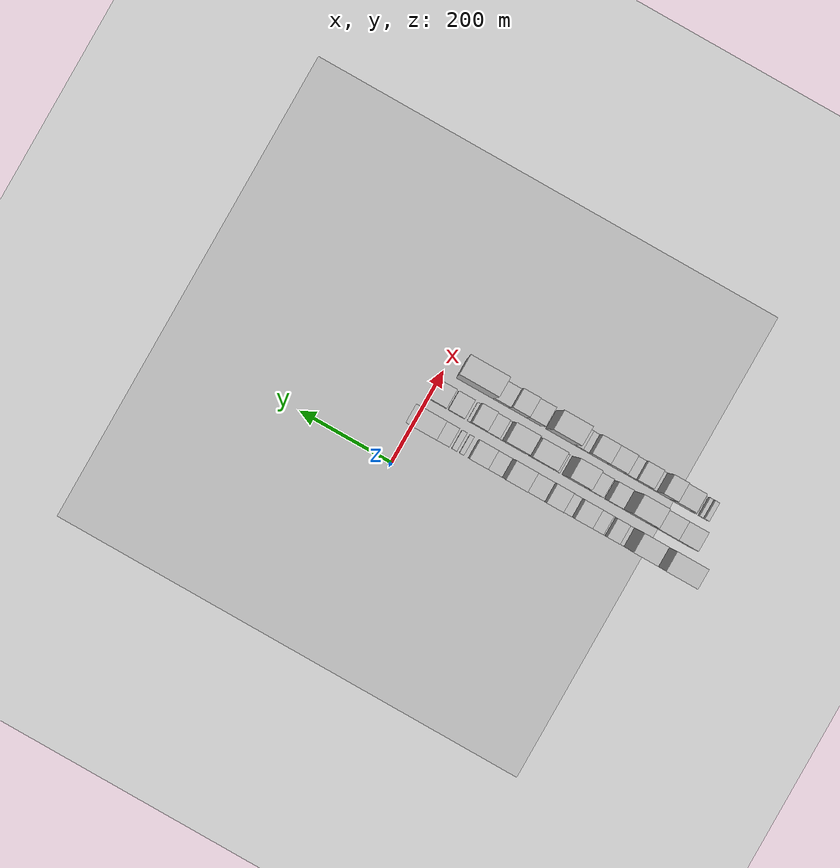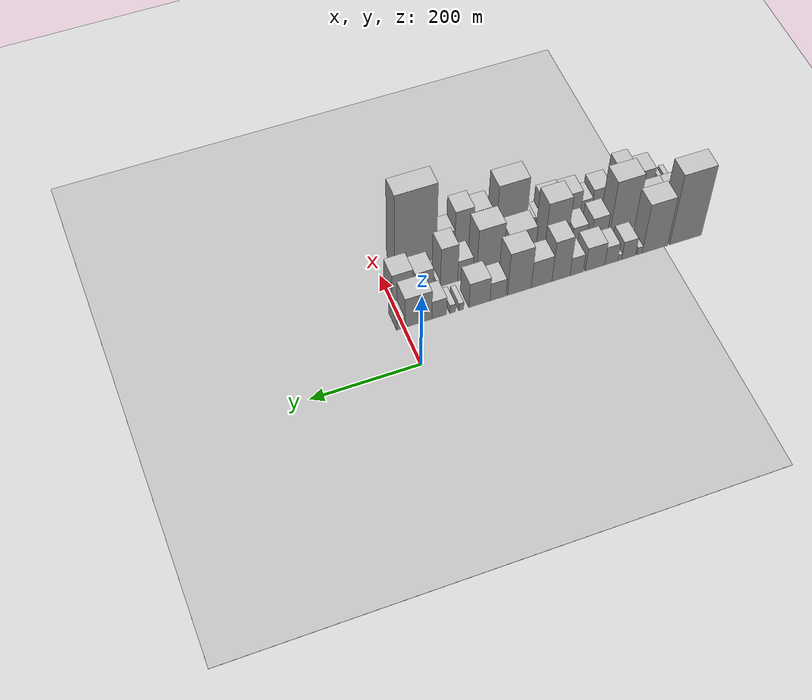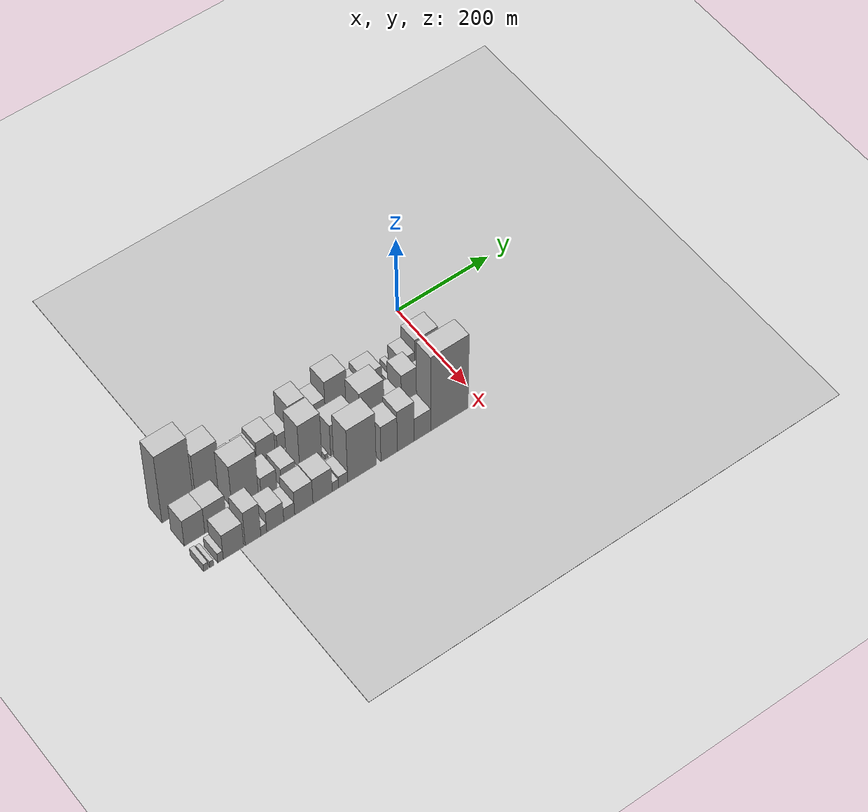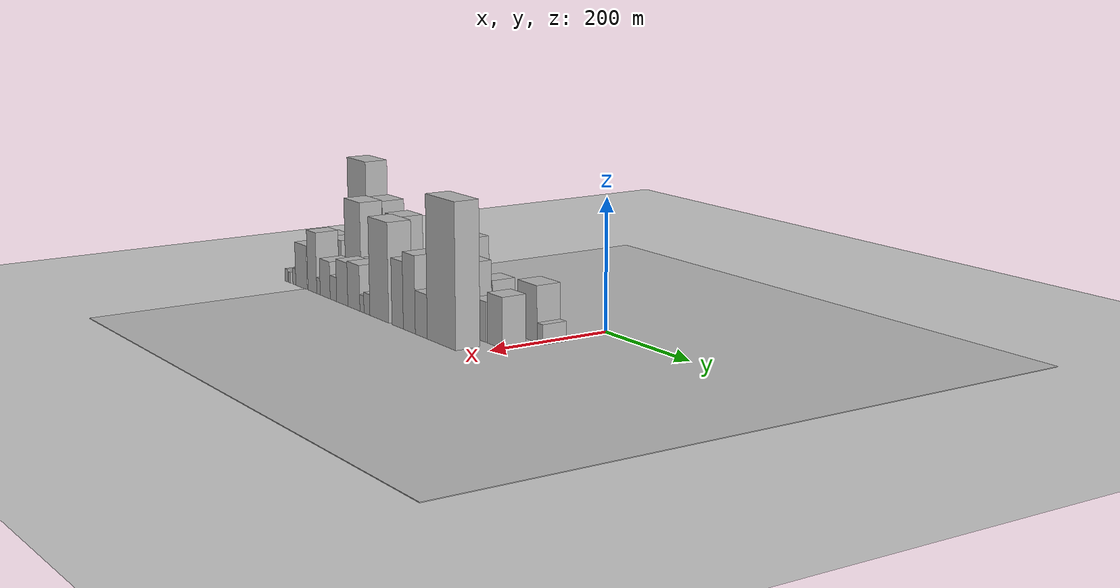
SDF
<sdf version="1.6">
 <world name="default">
  <include><name>ground_plane_1</name><uri>model://HANNAS_ground_plane</uri></include>
  <include>
   <name>ground_plane_2</name>
   <uri>model://HANNAS_ground_plane</uri>
   <pose>100 0 0  0 0 0</pose>
  </include>
  <model name="building_1">
   <static>1</static>
   <pose>100.0000 -543.1058 0 0.000000 0.000000 0.000000</pose>
   <link name="link">
    <pose>0 0 97.50 0 0 0</pose>
    <collision name="collision"><geometry><box><size>40.0000 63.7884 195.0000</size></box></geometry></collision>
    <visual name="visual">
     <cast_shadows>0</cast_shadows>
     <geometry><box><size>40.0000 63.7884 195.0000</size></box></geometry>
     <material>
      <script>
       <uri>model://HANNAS_wall/materials/scripts</uri>
       <uri>model://HANNAS_wall/materials/textures</uri>
       <name>vrc/HANNAS_wall</name>
      </script>
     </material>
    </visual>
   </link>
  </model>
  <model name="building_2">
   <static>1</static>
   <pose>100.0000 -481.8896 0 0.000000 0.000000 0.000000</pose>
   <link name="link">
    <pose>0 0 69.00 0 0 0</pose>
    <collision name="collision"><geometry><box><size>40.0000 50.6441 138.0000</size></box></geometry></collision>
    <visual name="visual">
     <cast_shadows>0</cast_shadows>
     <geometry><box><size>40.0000 50.6441 138.0000</size></box></geometry>
     <material>
      <script>
       <uri>model://HANNAS_wall/materials/scripts</uri>
       <uri>model://HANNAS_wall/materials/textures</uri>
       <name>vrc/HANNAS_wall</name>
      </script>
     </material>
    </visual>
   </link>
  </model>
  <model name="building_3">
   <static>1</static>
   <pose>100.0000 -451.5362 0 0.000000 0.000000 0.000000</pose>
   <link name="link">
    <pose>0 0 10.50 0 0 0</pose>
    <collision name="collision"><geometry><box><size>40.0000 10.0627 21.0000</size></box></geometry></collision>
    <visual name="visual">
     <cast_shadows>0</cast_shadows>
     <geometry><box><size>40.0000 10.0627 21.0000</size></box></geometry>
     <material>
      <script>
       <uri>model://HANNAS_wall/materials/scripts</uri>
       <uri>model://HANNAS_wall/materials/textures</uri>
       <name>vrc/HANNAS_wall</name>
      </script>
     </material>
    </visual>
   </link>
  </model>
  <model name="building_4">
   <static>1</static>
   <pose>100.0000 -429.8259 0 0.000000 0.000000 0.000000</pose>
   <link name="link">
    <pose>0 0 25.50 0 0 0</pose>
    <collision name="collision"><geometry><box><size>40.0000 27.3578 51.0000</size></box></geometry></collision>
    <visual name="visual">
     <cast_shadows>0</cast_shadows>
     <geometry><box><size>40.0000 27.3578 51.0000</size></box></geometry>
     <material>
      <script>
       <uri>model://HANNAS_wall/materials/scripts</uri>
       <uri>model://HANNAS_wall/materials/textures</uri>
       <name>vrc/HANNAS_wall</name>
      </script>
     </material>
    </visual>
   </link>
  </model>
  <model name="building_5">
   <static>1</static>
   <pose>100.0000 -412.1464 0 0.000000 0.000000 0.000000</pose>
   <link name="link">
    <pose>0 0 9.00 0 0 0</pose>
    <collision name="collision"><geometry><box><size>40.0000 8.0012 18.0000</size></box></geometry></collision>
    <visual name="visual">
     <cast_shadows>0</cast_shadows>
     <geometry><box><size>40.0000 8.0012 18.0000</size></box></geometry>
     <material>
      <script>
       <uri>model://HANNAS_wall/materials/scripts</uri>
       <uri>model://HANNAS_wall/materials/textures</uri>
       <name>vrc/HANNAS_wall</name>
      </script>
     </material>
    </visual>
   </link>
  </model>
  <model name="building_6">
   <static>1</static>
   <pose>100.0000 -395.3940 0 0.000000 0.000000 0.000000</pose>
   <link name="link">
    <pose>0 0 25.50 0 0 0</pose>
    <collision name="collision"><geometry><box><size>40.0000 25.5038 51.0000</size></box></geometry></collision>
    <visual name="visual">
     <cast_shadows>0</cast_shadows>
     <geometry><box><size>40.0000 25.5038 51.0000</size></box></geometry>
     <material>
      <script>
       <uri>model://HANNAS_wall/materials/scripts</uri>
       <uri>model://HANNAS_wall/materials/textures</uri>
       <name>vrc/HANNAS_wall</name>
      </script>
     </material>
    </visual>
   </link>
  </model>
  <model name="building_7">
   <static>1</static>
   <pose>100.0000 -363.7323 0 0.000000 0.000000 0.000000</pose>
   <link name="link">
    <pose>0 0 33.00 0 0 0</pose>
    <collision name="collision"><geometry><box><size>40.0000 37.8195 66.0000</size></box></geometry></collision>
    <visual name="visual">
     <cast_shadows>0</cast_shadows>
     <geometry><box><size>40.0000 37.8195 66.0000</size></box></geometry>
     <material>
      <script>
       <uri>model://HANNAS_wall/materials/scripts</uri>
       <uri>model://HANNAS_wall/materials/textures</uri>
       <name>vrc/HANNAS_wall</name>
      </script>
     </material>
    </visual>
   </link>
  </model>
  <model name="building_8">
   <static>1</static>
   <pose>100.0000 -327.9624 0 0.000000 0.000000 0.000000</pose>
   <link name="link">
    <pose>0 0 25.50 0 0 0</pose>
    <collision name="collision"><geometry><box><size>40.0000 25.7202 51.0000</size></box></geometry></collision>
    <visual name="visual">
     <cast_shadows>0</cast_shadows>
     <geometry><box><size>40.0000 25.7202 51.0000</size></box></geometry>
     <material>
      <script>
       <uri>model://HANNAS_wall/materials/scripts</uri>
       <uri>model://HANNAS_wall/materials/textures</uri>
       <name>vrc/HANNAS_wall</name>
      </script>
     </material>
    </visual>
   </link>
  </model>
  <model name="building_9">
   <static>1</static>
   <pose>100.0000 -297.5319 0 0.000000 0.000000 0.000000</pose>
   <link name="link">
    <pose>0 0 57.00 0 0 0</pose>
    <collision name="collision"><geometry><box><size>40.0000 35.1408 114.0000</size></box></geometry></collision>
    <visual name="visual">
     <cast_shadows>0</cast_shadows>
     <geometry><box><size>40.0000 35.1408 114.0000</size></box></geometry>
     <material>
      <script>
       <uri>model://HANNAS_wall/materials/scripts</uri>
       <uri>model://HANNAS_wall/materials/textures</uri>
       <name>vrc/HANNAS_wall</name>
      </script>
     </material>
    </visual>
   </link>
  </model>
  <model name="building_10">
   <static>1</static>
   <pose>100.0000 -260.0254 0 0.000000 0.000000 0.000000</pose>
   <link name="link">
    <pose>0 0 37.50 0 0 0</pose>
    <collision name="collision"><geometry><box><size>40.0000 39.8721 75.0000</size></box></geometry></collision>
    <visual name="visual">
     <cast_shadows>0</cast_shadows>
     <geometry><box><size>40.0000 39.8721 75.0000</size></box></geometry>
     <material>
      <script>
       <uri>model://HANNAS_wall/materials/scripts</uri>
       <uri>model://HANNAS_wall/materials/textures</uri>
       <name>vrc/HANNAS_wall</name>
      </script>
     </material>
    </visual>
   </link>
  </model>
  <model name="building_11">
   <static>1</static>
   <pose>100.0000 -217.4439 0 0.000000 0.000000 0.000000</pose>
   <link name="link">
    <pose>0 0 60.00 0 0 0</pose>
    <collision name="collision"><geometry><box><size>40.0000 45.2909 120.0000</size></box></geometry></collision>
    <visual name="visual">
     <cast_shadows>0</cast_shadows>
     <geometry><box><size>40.0000 45.2909 120.0000</size></box></geometry>
     <material>
      <script>
       <uri>model://HANNAS_wall/materials/scripts</uri>
       <uri>model://HANNAS_wall/materials/textures</uri>
       <name>vrc/HANNAS_wall</name>
      </script>
     </material>
    </visual>
   </link>
  </model>
  <model name="building_12">
   <static>1</static>
   <pose>100.0000 -176.5121 0 0.000000 0.000000 0.000000</pose>
   <link name="link">
    <pose>0 0 25.50 0 0 0</pose>
    <collision name="collision"><geometry><box><size>40.0000 30.5726 51.0000</size></box></geometry></collision>
    <visual name="visual">
     <cast_shadows>0</cast_shadows>
     <geometry><box><size>40.0000 30.5726 51.0000</size></box></geometry>
     <material>
      <script>
       <uri>model://HANNAS_wall/materials/scripts</uri>
       <uri>model://HANNAS_wall/materials/textures</uri>
       <name>vrc/HANNAS_wall</name>
      </script>
     </material>
    </visual>
   </link>
  </model>
  <model name="building_13">
   <static>1</static>
   <pose>100.0000 -141.3130 0 0.000000 0.000000 0.000000</pose>
   <link name="link">
    <pose>0 0 34.50 0 0 0</pose>
    <collision name="collision"><geometry><box><size>40.0000 39.8254 69.0000</size></box></geometry></collision>
    <visual name="visual">
     <cast_shadows>0</cast_shadows>
     <geometry><box><size>40.0000 39.8254 69.0000</size></box></geometry>
     <material>
      <script>
       <uri>model://HANNAS_wall/materials/scripts</uri>
       <uri>model://HANNAS_wall/materials/textures</uri>
       <name>vrc/HANNAS_wall</name>
      </script>
     </material>
    </visual>
   </link>
  </model>
  <model name="building_14">
   <static>1</static>
   <pose>100.0000 -106.7540 0 0.000000 0.000000 0.000000</pose>
   <link name="link">
    <pose>0 0 10.50 0 0 0</pose>
    <collision name="collision"><geometry><box><size>40.0000 9.2926 21.0000</size></box></geometry></collision>
    <visual name="visual">
     <cast_shadows>0</cast_shadows>
     <geometry><box><size>40.0000 9.2926 21.0000</size></box></geometry>
     <material>
      <script>
       <uri>model://HANNAS_wall/materials/scripts</uri>
       <uri>model://HANNAS_wall/materials/textures</uri>
       <name>vrc/HANNAS_wall</name>
      </script>
     </material>
    </visual>
   </link>
  </model>
  <model name="building_15">
   <static>1</static>
   <pose>100.0000 -90.6586 0 0.000000 0.000000 0.000000</pose>
   <link name="link">
    <pose>0 0 12.00 0 0 0</pose>
    <collision name="collision"><geometry><box><size>40.0000 10.8982 24.0000</size></box></geometry></collision>
    <visual name="visual">
     <cast_shadows>0</cast_shadows>
     <geometry><box><size>40.0000 10.8982 24.0000</size></box></geometry>
     <material>
      <script>
       <uri>model://HANNAS_wall/materials/scripts</uri>
       <uri>model://HANNAS_wall/materials/textures</uri>
       <name>vrc/HANNAS_wall</name>
      </script>
     </material>
    </visual>
   </link>
  </model>
  <model name="building_16">
   <static>1</static>
   <pose>100.0000 -65.3820 0 0.000000 0.000000 0.000000</pose>
   <link name="link">
    <pose>0 0 25.50 0 0 0</pose>
    <collision name="collision"><geometry><box><size>40.0000 27.6551 51.0000</size></box></geometry></collision>
    <visual name="visual">
     <cast_shadows>0</cast_shadows>
     <geometry><box><size>40.0000 27.6551 51.0000</size></box></geometry>
     <material>
      <script>
       <uri>model://HANNAS_wall/materials/scripts</uri>
       <uri>model://HANNAS_wall/materials/textures</uri>
       <name>vrc/HANNAS_wall</name>
      </script>
     </material>
    </visual>
   </link>
  </model>
  <model name="building_17">
   <static>1</static>
   <pose>100.0000 -26.5181 0 0.000000 0.000000 0.000000</pose>
   <link name="link">
    <pose>0 0 42.00 0 0 0</pose>
    <collision name="collision"><geometry><box><size>40.0000 50.0727 84.0000</size></box></geometry></collision>
    <visual name="visual">
     <cast_shadows>0</cast_shadows>
     <geometry><box><size>40.0000 50.0727 84.0000</size></box></geometry>
     <material>
      <script>
       <uri>model://HANNAS_wall/materials/scripts</uri>
       <uri>model://HANNAS_wall/materials/textures</uri>
       <name>vrc/HANNAS_wall</name>
      </script>
     </material>
    </visual>
   </link>
  </model>
  <model name="building_18">
   <static>1</static>
   <pose>100.0000 6.2643 0 0.000000 0.000000 0.000000</pose>
   <link name="link">
    <pose>0 0 15.00 0 0 0</pose>
    <collision name="collision"><geometry><box><size>40.0000 15.4921 30.0000</size></box></geometry></collision>
    <visual name="visual">
     <cast_shadows>0</cast_shadows>
     <geometry><box><size>40.0000 15.4921 30.0000</size></box></geometry>
     <material>
      <script>
       <uri>model://HANNAS_wall/materials/scripts</uri>
       <uri>model://HANNAS_wall/materials/textures</uri>
       <name>vrc/HANNAS_wall</name>
      </script>
     </material>
    </visual>
   </link>
  </model>
  <model name="building_33">
   <static>1</static>
   <pose>160.0000 -550.3264 0 0.000000 0.000000 0.000000</pose>
   <link name="link">
    <pose>0 0 37.50 0 0 0</pose>
    <collision name="collision"><geometry><box><size>40.0000 41.3473 75.0000</size></box></geometry></collision>
    <visual name="visual">
     <cast_shadows>0</cast_shadows>
     <geometry><box><size>40.0000 41.3473 75.0000</size></box></geometry>
     <material>
      <script>
       <uri>model://HANNAS_wall/materials/scripts</uri>
       <uri>model://HANNAS_wall/materials/textures</uri>
       <name>vrc/HANNAS_wall</name>
      </script>
     </material>
    </visual>
   </link>
  </model>
  <model name="building_34">
   <static>1</static>
   <pose>160.0000 -508.0930 0 0.000000 0.000000 0.000000</pose>
   <link name="link">
    <pose>0 0 37.50 0 0 0</pose>
    <collision name="collision"><geometry><box><size>40.0000 43.1194 75.0000</size></box></geometry></collision>
    <visual name="visual">
     <cast_shadows>0</cast_shadows>
     <geometry><box><size>40.0000 43.1194 75.0000</size></box></geometry>
     <material>
      <script>
       <uri>model://HANNAS_wall/materials/scripts</uri>
       <uri>model://HANNAS_wall/materials/textures</uri>
       <name>vrc/HANNAS_wall</name>
      </script>
     </material>
    </visual>
   </link>
  </model>
  <model name="building_35">
   <static>1</static>
   <pose>160.0000 -480.1149 0 0.000000 0.000000 0.000000</pose>
   <link name="link">
    <pose>0 0 13.50 0 0 0</pose>
    <collision name="collision"><geometry><box><size>40.0000 12.8369 27.0000</size></box></geometry></collision>
    <visual name="visual">
     <cast_shadows>0</cast_shadows>
     <geometry><box><size>40.0000 12.8369 27.0000</size></box></geometry>
     <material>
      <script>
       <uri>model://HANNAS_wall/materials/scripts</uri>
       <uri>model://HANNAS_wall/materials/textures</uri>
       <name>vrc/HANNAS_wall</name>
      </script>
     </material>
    </visual>
   </link>
  </model>
  <model name="building_36">
   <static>1</static>
   <pose>160.0000 -447.1562 0 0.000000 0.000000 0.000000</pose>
   <link name="link">
    <pose>0 0 73.50 0 0 0</pose>
    <collision name="collision"><geometry><box><size>40.0000 53.0805 147.0000</size></box></geometry></collision>
    <visual name="visual">
     <cast_shadows>0</cast_shadows>
     <geometry><box><size>40.0000 53.0805 147.0000</size></box></geometry>
     <material>
      <script>
       <uri>model://HANNAS_wall/materials/scripts</uri>
       <uri>model://HANNAS_wall/materials/textures</uri>
       <name>vrc/HANNAS_wall</name>
      </script>
     </material>
    </visual>
   </link>
  </model>
  <model name="building_37">
   <static>1</static>
   <pose>160.0000 -399.6846 0 0.000000 0.000000 0.000000</pose>
   <link name="link">
    <pose>0 0 30.00 0 0 0</pose>
    <collision name="collision"><geometry><box><size>40.0000 31.8627 60.0000</size></box></geometry></collision>
    <visual name="visual">
     <cast_shadows>0</cast_shadows>
     <geometry><box><size>40.0000 31.8627 60.0000</size></box></geometry>
     <material>
      <script>
       <uri>model://HANNAS_wall/materials/scripts</uri>
       <uri>model://HANNAS_wall/materials/textures</uri>
       <name>vrc/HANNAS_wall</name>
      </script>
     </material>
    </visual>
   </link>
  </model>
  <model name="building_38">
   <static>1</static>
   <pose>160.0000 -360.0923 0 0.000000 0.000000 0.000000</pose>
   <link name="link">
    <pose>0 0 25.50 0 0 0</pose>
    <collision name="collision"><geometry><box><size>40.0000 29.3219 51.0000</size></box></geometry></collision>
    <visual name="visual">
     <cast_shadows>0</cast_shadows>
     <geometry><box><size>40.0000 29.3219 51.0000</size></box></geometry>
     <material>
      <script>
       <uri>model://HANNAS_wall/materials/scripts</uri>
       <uri>model://HANNAS_wall/materials/textures</uri>
       <name>vrc/HANNAS_wall</name>
      </script>
     </material>
    </visual>
   </link>
  </model>
  <model name="building_39">
   <static>1</static>
   <pose>160.0000 -340.8423 0 0.000000 0.000000 0.000000</pose>
   <link name="link">
    <pose>0 0 10.50 0 0 0</pose>
    <collision name="collision"><geometry><box><size>40.0000 9.1782 21.0000</size></box></geometry></collision>
    <visual name="visual">
     <cast_shadows>0</cast_shadows>
     <geometry><box><size>40.0000 9.1782 21.0000</size></box></geometry>
     <material>
      <script>
       <uri>model://HANNAS_wall/materials/scripts</uri>
       <uri>model://HANNAS_wall/materials/textures</uri>
       <name>vrc/HANNAS_wall</name>
      </script>
     </material>
    </visual>
   </link>
  </model>
  <model name="building_40">
   <static>1</static>
   <pose>160.0000 -313.5708 0 0.000000 0.000000 0.000000</pose>
   <link name="link">
    <pose>0 0 72.00 0 0 0</pose>
    <collision name="collision"><geometry><box><size>40.0000 45.3649 144.0000</size></box></geometry></collision>
    <visual name="visual">
     <cast_shadows>0</cast_shadows>
     <geometry><box><size>40.0000 45.3649 144.0000</size></box></geometry>
     <material>
      <script>
       <uri>model://HANNAS_wall/materials/scripts</uri>
       <uri>model://HANNAS_wall/materials/textures</uri>
       <name>vrc/HANNAS_wall</name>
      </script>
     </material>
    </visual>
   </link>
  </model>
  <model name="building_41">
   <static>1</static>
   <pose>160.0000 -281.3883 0 0.000000 0.000000 0.000000</pose>
   <link name="link">
    <pose>0 0 7.50 0 0 0</pose>
    <collision name="collision"><geometry><box><size>40.0000 7.0001 15.0000</size></box></geometry></collision>
    <visual name="visual">
     <cast_shadows>0</cast_shadows>
     <geometry><box><size>40.0000 7.0001 15.0000</size></box></geometry>
     <material>
      <script>
       <uri>model://HANNAS_wall/materials/scripts</uri>
       <uri>model://HANNAS_wall/materials/textures</uri>
       <name>vrc/HANNAS_wall</name>
      </script>
     </material>
    </visual>
   </link>
  </model>
  <model name="building_42">
   <static>1</static>
   <pose>160.0000 -245.9343 0 0.000000 0.000000 0.000000</pose>
   <link name="link">
    <pose>0 0 45.00 0 0 0</pose>
    <collision name="collision"><geometry><box><size>40.0000 53.9079 90.0000</size></box></geometry></collision>
    <visual name="visual">
     <cast_shadows>0</cast_shadows>
     <geometry><box><size>40.0000 53.9079 90.0000</size></box></geometry>
     <material>
      <script>
       <uri>model://HANNAS_wall/materials/scripts</uri>
       <uri>model://HANNAS_wall/materials/textures</uri>
       <name>vrc/HANNAS_wall</name>
      </script>
     </material>
    </visual>
   </link>
  </model>
  <model name="building_43">
   <static>1</static>
   <pose>160.0000 -185.7181 0 0.000000 0.000000 0.000000</pose>
   <link name="link">
    <pose>0 0 64.50 0 0 0</pose>
    <collision name="collision"><geometry><box><size>40.0000 50.5245 129.0000</size></box></geometry></collision>
    <visual name="visual">
     <cast_shadows>0</cast_shadows>
     <geometry><box><size>40.0000 50.5245 129.0000</size></box></geometry>
     <material>
      <script>
       <uri>model://HANNAS_wall/materials/scripts</uri>
       <uri>model://HANNAS_wall/materials/textures</uri>
       <name>vrc/HANNAS_wall</name>
      </script>
     </material>
    </visual>
   </link>
  </model>
  <model name="building_44">
   <static>1</static>
   <pose>160.0000 -156.7554 0 0.000000 0.000000 0.000000</pose>
   <link name="link">
    <pose>0 0 7.50 0 0 0</pose>
    <collision name="collision"><geometry><box><size>40.0000 7.4009 15.0000</size></box></geometry></collision>
    <visual name="visual">
     <cast_shadows>0</cast_shadows>
     <geometry><box><size>40.0000 7.4009 15.0000</size></box></geometry>
     <material>
      <script>
       <uri>model://HANNAS_wall/materials/scripts</uri>
       <uri>model://HANNAS_wall/materials/textures</uri>
       <name>vrc/HANNAS_wall</name>
      </script>
     </material>
    </visual>
   </link>
  </model>
  <model name="building_45">
   <static>1</static>
   <pose>160.0000 -138.5948 0 0.000000 0.000000 0.000000</pose>
   <link name="link">
    <pose>0 0 28.50 0 0 0</pose>
    <collision name="collision"><geometry><box><size>40.0000 28.9203 57.0000</size></box></geometry></collision>
    <visual name="visual">
     <cast_shadows>0</cast_shadows>
     <geometry><box><size>40.0000 28.9203 57.0000</size></box></geometry>
     <material>
      <script>
       <uri>model://HANNAS_wall/materials/scripts</uri>
       <uri>model://HANNAS_wall/materials/textures</uri>
       <name>vrc/HANNAS_wall</name>
      </script>
     </material>
    </visual>
   </link>
  </model>
  <model name="building_46">
   <static>1</static>
   <pose>160.0000 -107.6425 0 0.000000 0.000000 0.000000</pose>
   <link name="link">
    <pose>0 0 54.00 0 0 0</pose>
    <collision name="collision"><geometry><box><size>40.0000 32.9844 108.0000</size></box></geometry></collision>
    <visual name="visual">
     <cast_shadows>0</cast_shadows>
     <geometry><box><size>40.0000 32.9844 108.0000</size></box></geometry>
     <material>
      <script>
       <uri>model://HANNAS_wall/materials/scripts</uri>
       <uri>model://HANNAS_wall/materials/textures</uri>
       <name>vrc/HANNAS_wall</name>
      </script>
     </material>
    </visual>
   </link>
  </model>
  <model name="building_47">
   <static>1</static>
   <pose>160.0000 -88.0593 0 0.000000 0.000000 0.000000</pose>
   <link name="link">
    <pose>0 0 7.50 0 0 0</pose>
    <collision name="collision"><geometry><box><size>40.0000 6.1819 15.0000</size></box></geometry></collision>
    <visual name="visual">
     <cast_shadows>0</cast_shadows>
     <geometry><box><size>40.0000 6.1819 15.0000</size></box></geometry>
     <material>
      <script>
       <uri>model://HANNAS_wall/materials/scripts</uri>
       <uri>model://HANNAS_wall/materials/textures</uri>
       <name>vrc/HANNAS_wall</name>
      </script>
     </material>
    </visual>
   </link>
  </model>
  <model name="building_48">
   <static>1</static>
   <pose>160.0000 -60.5880 0 0.000000 0.000000 0.000000</pose>
   <link name="link">
    <pose>0 0 30.00 0 0 0</pose>
    <collision name="collision"><geometry><box><size>40.0000 34.7608 60.0000</size></box></geometry></collision>
    <visual name="visual">
     <cast_shadows>0</cast_shadows>
     <geometry><box><size>40.0000 34.7608 60.0000</size></box></geometry>
     <material>
      <script>
       <uri>model://HANNAS_wall/materials/scripts</uri>
       <uri>model://HANNAS_wall/materials/textures</uri>
       <name>vrc/HANNAS_wall</name>
      </script>
     </material>
    </visual>
   </link>
  </model>
  <model name="building_49">
   <static>1</static>
   <pose>160.0000 -19.3362 0 0.000000 0.000000 0.000000</pose>
   <link name="link">
    <pose>0 0 37.50 0 0 0</pose>
    <collision name="collision"><geometry><box><size>40.0000 39.7428 75.0000</size></box></geometry></collision>
    <visual name="visual">
     <cast_shadows>0</cast_shadows>
     <geometry><box><size>40.0000 39.7428 75.0000</size></box></geometry>
     <material>
      <script>
       <uri>model://HANNAS_wall/materials/scripts</uri>
       <uri>model://HANNAS_wall/materials/textures</uri>
       <name>vrc/HANNAS_wall</name>
      </script>
     </material>
    </visual>
   </link>
  </model>
  <model name="building_71">
   <static>1</static>
   <pose>220.0000 -568.3498 0 0.000000 0.000000 0.000000</pose>
   <link name="link">
    <pose>0 0 10.50 0 0 0</pose>
    <collision name="collision"><geometry><box><size>40.0000 9.3004 21.0000</size></box></geometry></collision>
    <visual name="visual">
     <cast_shadows>0</cast_shadows>
     <geometry><box><size>40.0000 9.3004 21.0000</size></box></geometry>
     <material>
      <script>
       <uri>model://HANNAS_wall/materials/scripts</uri>
       <uri>model://HANNAS_wall/materials/textures</uri>
       <name>vrc/HANNAS_wall</name>
      </script>
     </material>
    </visual>
   </link>
  </model>
  <model name="building_72">
   <static>1</static>
   <pose>220.0000 -556.8228 0 0.000000 0.000000 0.000000</pose>
   <link name="link">
    <pose>0 0 9.00 0 0 0</pose>
    <collision name="collision"><geometry><box><size>40.0000 7.7536 18.0000</size></box></geometry></collision>
    <visual name="visual">
     <cast_shadows>0</cast_shadows>
     <geometry><box><size>40.0000 7.7536 18.0000</size></box></geometry>
     <material>
      <script>
       <uri>model://HANNAS_wall/materials/scripts</uri>
       <uri>model://HANNAS_wall/materials/textures</uri>
       <name>vrc/HANNAS_wall</name>
      </script>
     </material>
    </visual>
   </link>
  </model>
  <model name="building_73">
   <static>1</static>
   <pose>220.0000 -539.4305 0 0.000000 0.000000 0.000000</pose>
   <link name="link">
    <pose>0 0 13.50 0 0 0</pose>
    <collision name="collision"><geometry><box><size>40.0000 11.0309 27.0000</size></box></geometry></collision>
    <visual name="visual">
     <cast_shadows>0</cast_shadows>
     <geometry><box><size>40.0000 11.0309 27.0000</size></box></geometry>
     <material>
      <script>
       <uri>model://HANNAS_wall/materials/scripts</uri>
       <uri>model://HANNAS_wall/materials/textures</uri>
       <name>vrc/HANNAS_wall</name>
      </script>
     </material>
    </visual>
   </link>
  </model>
  <model name="building_74">
   <static>1</static>
   <pose>220.0000 -513.4169 0 0.000000 0.000000 0.000000</pose>
   <link name="link">
    <pose>0 0 36.00 0 0 0</pose>
    <collision name="collision"><geometry><box><size>40.0000 40.9963 72.0000</size></box></geometry></collision>
    <visual name="visual">
     <cast_shadows>0</cast_shadows>
     <geometry><box><size>40.0000 40.9963 72.0000</size></box></geometry>
     <material>
      <script>
       <uri>model://HANNAS_wall/materials/scripts</uri>
       <uri>model://HANNAS_wall/materials/textures</uri>
       <name>vrc/HANNAS_wall</name>
      </script>
     </material>
    </visual>
   </link>
  </model>
  <model name="building_75">
   <static>1</static>
   <pose>220.0000 -474.1805 0 0.000000 0.000000 0.000000</pose>
   <link name="link">
    <pose>0 0 49.50 0 0 0</pose>
    <collision name="collision"><geometry><box><size>40.0000 31.4765 99.0000</size></box></geometry></collision>
    <visual name="visual">
     <cast_shadows>0</cast_shadows>
     <geometry><box><size>40.0000 31.4765 99.0000</size></box></geometry>
     <material>
      <script>
       <uri>model://HANNAS_wall/materials/scripts</uri>
       <uri>model://HANNAS_wall/materials/textures</uri>
       <name>vrc/HANNAS_wall</name>
      </script>
     </material>
    </visual>
   </link>
  </model>
  <model name="building_76">
   <static>1</static>
   <pose>220.0000 -452.4859 0 0.000000 0.000000 0.000000</pose>
   <link name="link">
    <pose>0 0 13.50 0 0 0</pose>
    <collision name="collision"><geometry><box><size>40.0000 11.9127 27.0000</size></box></geometry></collision>
    <visual name="visual">
     <cast_shadows>0</cast_shadows>
     <geometry><box><size>40.0000 11.9127 27.0000</size></box></geometry>
     <material>
      <script>
       <uri>model://HANNAS_wall/materials/scripts</uri>
       <uri>model://HANNAS_wall/materials/textures</uri>
       <name>vrc/HANNAS_wall</name>
      </script>
     </material>
    </visual>
   </link>
  </model>
  <model name="building_77">
   <static>1</static>
   <pose>220.0000 -429.2445 0 0.000000 0.000000 0.000000</pose>
   <link name="link">
    <pose>0 0 30.00 0 0 0</pose>
    <collision name="collision"><geometry><box><size>40.0000 34.5701 60.0000</size></box></geometry></collision>
    <visual name="visual">
     <cast_shadows>0</cast_shadows>
     <geometry><box><size>40.0000 34.5701 60.0000</size></box></geometry>
     <material>
      <script>
       <uri>model://HANNAS_wall/materials/scripts</uri>
       <uri>model://HANNAS_wall/materials/textures</uri>
       <name>vrc/HANNAS_wall</name>
      </script>
     </material>
    </visual>
   </link>
  </model>
  <model name="building_78">
   <static>1</static>
   <pose>220.0000 -400.8491 0 0.000000 0.000000 0.000000</pose>
   <link name="link">
    <pose>0 0 19.50 0 0 0</pose>
    <collision name="collision"><geometry><box><size>40.0000 22.2207 39.0000</size></box></geometry></collision>
    <visual name="visual">
     <cast_shadows>0</cast_shadows>
     <geometry><box><size>40.0000 22.2207 39.0000</size></box></geometry>
     <material>
      <script>
       <uri>model://HANNAS_wall/materials/scripts</uri>
       <uri>model://HANNAS_wall/materials/textures</uri>
       <name>vrc/HANNAS_wall</name>
      </script>
     </material>
    </visual>
   </link>
  </model>
  <model name="building_79">
   <static>1</static>
   <pose>220.0000 -371.0449 0 0.000000 0.000000 0.000000</pose>
   <link name="link">
    <pose>0 0 34.50 0 0 0</pose>
    <collision name="collision"><geometry><box><size>40.0000 37.3878 69.0000</size></box></geometry></collision>
    <visual name="visual">
     <cast_shadows>0</cast_shadows>
     <geometry><box><size>40.0000 37.3878 69.0000</size></box></geometry>
     <material>
      <script>
       <uri>model://HANNAS_wall/materials/scripts</uri>
       <uri>model://HANNAS_wall/materials/textures</uri>
       <name>vrc/HANNAS_wall</name>
      </script>
     </material>
    </visual>
   </link>
  </model>
  <model name="building_80">
   <static>1</static>
   <pose>220.0000 -332.5662 0 0.000000 0.000000 0.000000</pose>
   <link name="link">
    <pose>0 0 36.00 0 0 0</pose>
    <collision name="collision"><geometry><box><size>40.0000 39.5696 72.0000</size></box></geometry></collision>
    <visual name="visual">
     <cast_shadows>0</cast_shadows>
     <geometry><box><size>40.0000 39.5696 72.0000</size></box></geometry>
     <material>
      <script>
       <uri>model://HANNAS_wall/materials/scripts</uri>
       <uri>model://HANNAS_wall/materials/textures</uri>
       <name>vrc/HANNAS_wall</name>
      </script>
     </material>
    </visual>
   </link>
  </model>
  <model name="building_81">
   <static>1</static>
   <pose>220.0000 -306.1816 0 0.000000 0.000000 0.000000</pose>
   <link name="link">
    <pose>0 0 13.50 0 0 0</pose>
    <collision name="collision"><geometry><box><size>40.0000 13.1996 27.0000</size></box></geometry></collision>
    <visual name="visual">
     <cast_shadows>0</cast_shadows>
     <geometry><box><size>40.0000 13.1996 27.0000</size></box></geometry>
     <material>
      <script>
       <uri>model://HANNAS_wall/materials/scripts</uri>
       <uri>model://HANNAS_wall/materials/textures</uri>
       <name>vrc/HANNAS_wall</name>
      </script>
     </material>
    </visual>
   </link>
  </model>
  <model name="building_82">
   <static>1</static>
   <pose>220.0000 -290.1167 0 0.000000 0.000000 0.000000</pose>
   <link name="link">
    <pose>0 0 16.50 0 0 0</pose>
    <collision name="collision"><geometry><box><size>40.0000 18.9301 33.0000</size></box></geometry></collision>
    <visual name="visual">
     <cast_shadows>0</cast_shadows>
     <geometry><box><size>40.0000 18.9301 33.0000</size></box></geometry>
     <material>
      <script>
       <uri>model://HANNAS_wall/materials/scripts</uri>
       <uri>model://HANNAS_wall/materials/textures</uri>
       <name>vrc/HANNAS_wall</name>
      </script>
     </material>
    </visual>
   </link>
  </model>
  <model name="building_83">
   <static>1</static>
   <pose>220.0000 -251.1194 0 0.000000 0.000000 0.000000</pose>
   <link name="link">
    <pose>0 0 76.50 0 0 0</pose>
    <collision name="collision"><geometry><box><size>40.0000 59.0645 153.0000</size></box></geometry></collision>
    <visual name="visual">
     <cast_shadows>0</cast_shadows>
     <geometry><box><size>40.0000 59.0645 153.0000</size></box></geometry>
     <material>
      <script>
       <uri>model://HANNAS_wall/materials/scripts</uri>
       <uri>model://HANNAS_wall/materials/textures</uri>
       <name>vrc/HANNAS_wall</name>
      </script>
     </material>
    </visual>
   </link>
  </model>
  <model name="building_84">
   <static>1</static>
   <pose>220.0000 -194.4190 0 0.000000 0.000000 0.000000</pose>
   <link name="link">
    <pose>0 0 51.00 0 0 0</pose>
    <collision name="collision"><geometry><box><size>40.0000 34.3363 102.0000</size></box></geometry></collision>
    <visual name="visual">
     <cast_shadows>0</cast_shadows>
     <geometry><box><size>40.0000 34.3363 102.0000</size></box></geometry>
     <material>
      <script>
       <uri>model://HANNAS_wall/materials/scripts</uri>
       <uri>model://HANNAS_wall/materials/textures</uri>
       <name>vrc/HANNAS_wall</name>
      </script>
     </material>
    </visual>
   </link>
  </model>
  <model name="building_85">
   <static>1</static>
   <pose>220.0000 -159.4983 0 0.000000 0.000000 0.000000</pose>
   <link name="link">
    <pose>0 0 58.50 0 0 0</pose>
    <collision name="collision"><geometry><box><size>40.0000 35.5050 117.0000</size></box></geometry></collision>
    <visual name="visual">
     <cast_shadows>0</cast_shadows>
     <geometry><box><size>40.0000 35.5050 117.0000</size></box></geometry>
     <material>
      <script>
       <uri>model://HANNAS_wall/materials/scripts</uri>
       <uri>model://HANNAS_wall/materials/textures</uri>
       <name>vrc/HANNAS_wall</name>
      </script>
     </material>
    </visual>
   </link>
  </model>
  <model name="building_86">
   <static>1</static>
   <pose>220.0000 -124.2521 0 0.000000 0.000000 0.000000</pose>
   <link name="link">
    <pose>0 0 33.00 0 0 0</pose>
    <collision name="collision"><geometry><box><size>40.0000 34.9875 66.0000</size></box></geometry></collision>
    <visual name="visual">
     <cast_shadows>0</cast_shadows>
     <geometry><box><size>40.0000 34.9875 66.0000</size></box></geometry>
     <material>
      <script>
       <uri>model://HANNAS_wall/materials/scripts</uri>
       <uri>model://HANNAS_wall/materials/textures</uri>
       <name>vrc/HANNAS_wall</name>
      </script>
     </material>
    </visual>
   </link>
  </model>
  <model name="building_87">
   <static>1</static>
   <pose>220.0000 -66.8857 0 0.000000 0.000000 0.000000</pose>
   <link name="link">
    <pose>0 0 106.50 0 0 0</pose>
    <collision name="collision"><geometry><box><size>40.0000 79.7451 213.0000</size></box></geometry></collision>
    <visual name="visual">
     <cast_shadows>0</cast_shadows>
     <geometry><box><size>40.0000 79.7451 213.0000</size></box></geometry>
     <material>
      <script>
       <uri>model://HANNAS_wall/materials/scripts</uri>
       <uri>model://HANNAS_wall/materials/textures</uri>
       <name>vrc/HANNAS_wall</name>
      </script>
     </material>
    </visual>
   </link>
  </model>
 </world>
</sdf>
